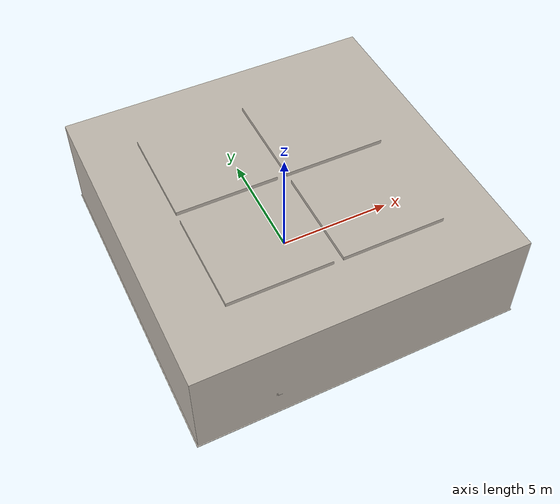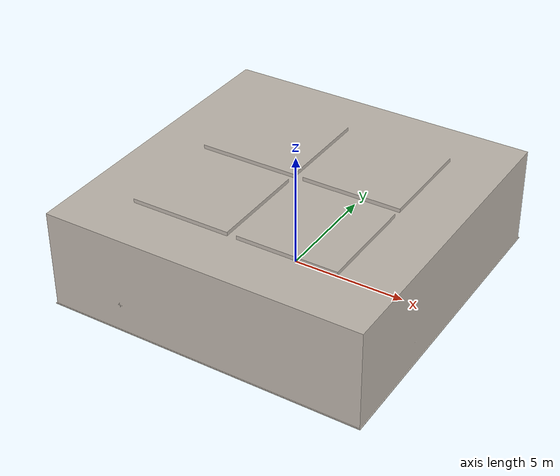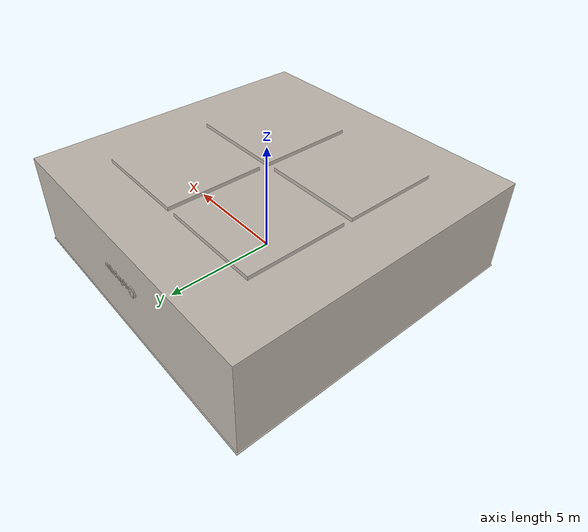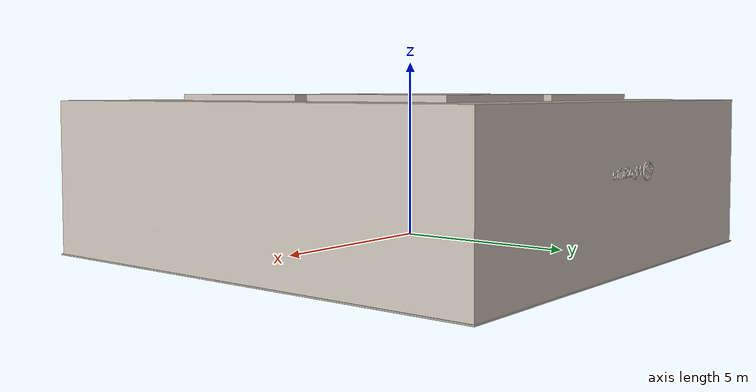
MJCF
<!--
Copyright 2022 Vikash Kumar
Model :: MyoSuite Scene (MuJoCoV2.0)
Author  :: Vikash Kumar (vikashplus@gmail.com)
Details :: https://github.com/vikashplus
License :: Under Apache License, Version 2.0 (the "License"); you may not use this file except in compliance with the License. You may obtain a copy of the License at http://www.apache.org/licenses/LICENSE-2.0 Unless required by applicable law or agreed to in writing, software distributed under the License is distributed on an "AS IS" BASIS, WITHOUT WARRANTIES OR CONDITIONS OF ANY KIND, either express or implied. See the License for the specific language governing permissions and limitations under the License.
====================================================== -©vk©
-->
<mujoco model="myosuite_scene">
    <!-- load texture and msh files -©vk©-->

    <compiler angle="radian" meshdir=".." texturedir=".."/>
    <asset>
        <!-- Scene -©vk©-->
        <texture name="textscene" type="2d" file="scene/myosuite_scene.png"/>
        <material name="matscene" texture="textscene"/>
        <mesh name="meshscene" file="scene/myosuite_scene_noFloor.msh" scale=".01 .01 .01"/>

        <!-- Floor -©vk©-->
        <texture name="texfloor" type="2d" height="1" width="1" file="scene/floor0.png"/>
        <material name="matfloor" reflectance="0.01" texture="texfloor" texrepeat="1 1" texuniform="true"/>

        <!-- Logo -©vk©-->
        <texture name="textlogo" type="2d" file="scene/myosuite_logo.png"/>
        <mesh name="logo" file="scene/myosuite_logo.msh" scale="1 1 1"/>
        <material name="matlogo" texture="textlogo"/>

        <!-- decorative full-body backdrop: include scene/myobody_skeleton_decor_assets.xml + scene/myobody_skeleton_decor.xml (see myo_sim/models/scene/README.md) -->
    </asset>

    <statistic extent="5" center="0 -1 1"/>

    <visual>
        <scale light=".05" framewidth=".005"/>
        <headlight ambient=".5 .5 .5" diffuse="0.50 0.50 0.50" specular="0.50 0.50 0.50"/>
        <global elevation="-15"/>
        <rgba actuator='.7 .4 .4 1' actuatorpositive='1 0 0 1' actuatornegative='.175 .1 .1 1'/>
    </visual>

    <!-- Add files to the world -©vk©-->
    <worldbody>
        <!-- indoor lights -©vk©-->
        <light directional="false" diffuse=".5 .5 .5" specular="0.25 0.25 0.25" pos="0 -3 3" dir="0 1 -1" mode="trackcom"/>
        <camera name="side_view" pos="-3 0 2.25" xyaxes="0 -1 0 1 0 2" mode="trackcom"/>
        <camera name="front_view" pos="0 -3 2.25" xyaxes="1 0 0 0 1 2" mode="trackcom"/>

        <geom name="floor" pos="0 0 -.4" size="7 7 .1" conaffinity="1" contype="1" type="plane" material="matfloor" condim="3" group="1"/>
        <geom type="mesh" mesh="meshscene" material="matscene" pos="0 0 -.41326" euler="0 0 0"  conaffinity="0" contype="0" group="1"/>
        <geom type="cylinder" pos="0 0 -.190" size="1.05 .205" contype="1" conaffinity="1" group="4"/>
        <geom type="mesh" mesh="logo" material="matlogo" group="1" conaffinity="0" contype="0" euler="1.57 0 0" pos="0 6.95 2.1"/>

    </worldbody>
</mujoco>
